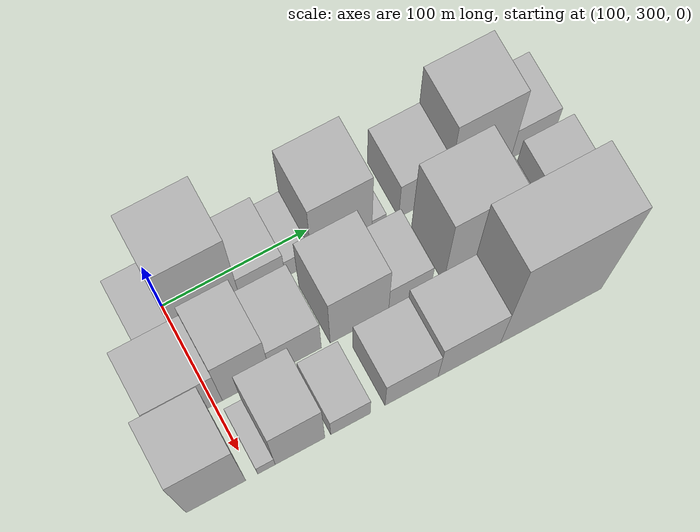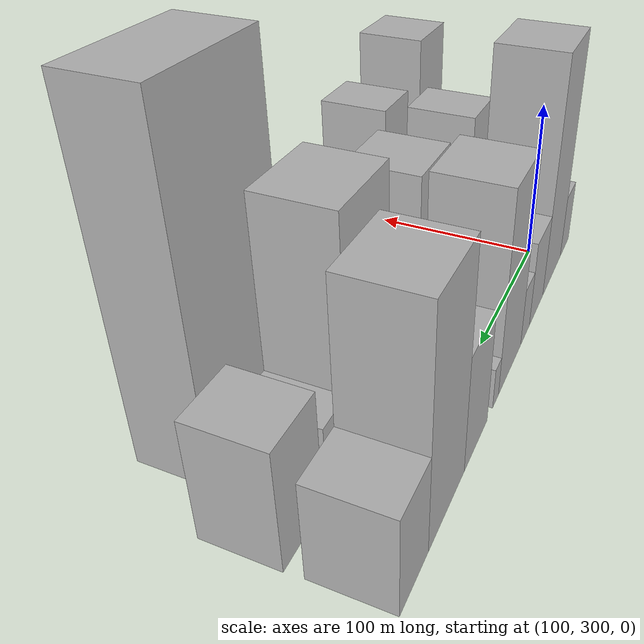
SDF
<sdf version="1.6">
 <world name="default">
  <model name="building_26">
   <static>1</static>
   <pose>100.0000 286.7399 0 0.000000 0.000000 0.000000</pose>
   <link name="link">
    <pose>0 0 21.00 0 0 0</pose>
    <collision name="collision"><geometry><box><size>40.0000 23.2135 42.0000</size></box></geometry></collision>
    <visual name="visual">
     <cast_shadows>0</cast_shadows>
     <geometry><box><size>40.0000 23.2135 42.0000</size></box></geometry>
     <material>
      <script>
       <uri>model://HANNAS_wall/materials/scripts</uri>
       <uri>model://HANNAS_wall/materials/textures</uri>
       <name>vrc/HANNAS_wall</name>
      </script>
     </material>
    </visual>
   </link>
  </model>
  <model name="building_27">
   <static>1</static>
   <pose>100.0000 320.9739 0 0.000000 0.000000 0.000000</pose>
   <link name="link">
    <pose>0 0 73.50 0 0 0</pose>
    <collision name="collision"><geometry><box><size>40.0000 45.2546 147.0000</size></box></geometry></collision>
    <visual name="visual">
     <cast_shadows>0</cast_shadows>
     <geometry><box><size>40.0000 45.2546 147.0000</size></box></geometry>
     <material>
      <script>
       <uri>model://HANNAS_wall/materials/scripts</uri>
       <uri>model://HANNAS_wall/materials/textures</uri>
       <name>vrc/HANNAS_wall</name>
      </script>
     </material>
    </visual>
   </link>
  </model>
  <model name="building_28">
   <static>1</static>
   <pose>100.0000 358.9560 0 0.000000 0.000000 0.000000</pose>
   <link name="link">
    <pose>0 0 27.00 0 0 0</pose>
    <collision name="collision"><geometry><box><size>40.0000 30.7095 54.0000</size></box></geometry></collision>
    <visual name="visual">
     <cast_shadows>0</cast_shadows>
     <geometry><box><size>40.0000 30.7095 54.0000</size></box></geometry>
     <material>
      <script>
       <uri>model://HANNAS_wall/materials/scripts</uri>
       <uri>model://HANNAS_wall/materials/textures</uri>
       <name>vrc/HANNAS_wall</name>
      </script>
     </material>
    </visual>
   </link>
  </model>
  <model name="building_29">
   <static>1</static>
   <pose>100.0000 383.4012 0 0.000000 0.000000 0.000000</pose>
   <link name="link">
    <pose>0 0 18.00 0 0 0</pose>
    <collision name="collision"><geometry><box><size>40.0000 18.1811 36.0000</size></box></geometry></collision>
    <visual name="visual">
     <cast_shadows>0</cast_shadows>
     <geometry><box><size>40.0000 18.1811 36.0000</size></box></geometry>
     <material>
      <script>
       <uri>model://HANNAS_wall/materials/scripts</uri>
       <uri>model://HANNAS_wall/materials/textures</uri>
       <name>vrc/HANNAS_wall</name>
      </script>
     </material>
    </visual>
   </link>
  </model>
  <model name="building_30">
   <static>1</static>
   <pose>100.0000 413.2691 0 0.000000 0.000000 0.000000</pose>
   <link name="link">
    <pose>0 0 58.50 0 0 0</pose>
    <collision name="collision"><geometry><box><size>40.0000 41.5546 117.0000</size></box></geometry></collision>
    <visual name="visual">
     <cast_shadows>0</cast_shadows>
     <geometry><box><size>40.0000 41.5546 117.0000</size></box></geometry>
     <material>
      <script>
       <uri>model://HANNAS_wall/materials/scripts</uri>
       <uri>model://HANNAS_wall/materials/textures</uri>
       <name>vrc/HANNAS_wall</name>
      </script>
     </material>
    </visual>
   </link>
  </model>
  <model name="building_31">
   <static>1</static>
   <pose>100.0000 438.9469 0 0.000000 0.000000 0.000000</pose>
   <link name="link">
    <pose>0 0 12.00 0 0 0</pose>
    <collision name="collision"><geometry><box><size>40.0000 9.8010 24.0000</size></box></geometry></collision>
    <visual name="visual">
     <cast_shadows>0</cast_shadows>
     <geometry><box><size>40.0000 9.8010 24.0000</size></box></geometry>
     <material>
      <script>
       <uri>model://HANNAS_wall/materials/scripts</uri>
       <uri>model://HANNAS_wall/materials/textures</uri>
       <name>vrc/HANNAS_wall</name>
      </script>
     </material>
    </visual>
   </link>
  </model>
  <model name="building_32">
   <static>1</static>
   <pose>100.0000 469.9626 0 0.000000 0.000000 0.000000</pose>
   <link name="link">
    <pose>0 0 33.00 0 0 0</pose>
    <collision name="collision"><geometry><box><size>40.0000 34.2305 66.0000</size></box></geometry></collision>
    <visual name="visual">
     <cast_shadows>0</cast_shadows>
     <geometry><box><size>40.0000 34.2305 66.0000</size></box></geometry>
     <material>
      <script>
       <uri>model://HANNAS_wall/materials/scripts</uri>
       <uri>model://HANNAS_wall/materials/textures</uri>
       <name>vrc/HANNAS_wall</name>
      </script>
     </material>
    </visual>
   </link>
  </model>
  <model name="building_33">
   <static>1</static>
   <pose>100.0000 509.4696 0 0.000000 0.000000 0.000000</pose>
   <link name="link">
    <pose>0 0 63.00 0 0 0</pose>
    <collision name="collision"><geometry><box><size>40.0000 44.7833 126.0000</size></box></geometry></collision>
    <visual name="visual">
     <cast_shadows>0</cast_shadows>
     <geometry><box><size>40.0000 44.7833 126.0000</size></box></geometry>
     <material>
      <script>
       <uri>model://HANNAS_wall/materials/scripts</uri>
       <uri>model://HANNAS_wall/materials/textures</uri>
       <name>vrc/HANNAS_wall</name>
      </script>
     </material>
    </visual>
   </link>
  </model>
  <model name="building_34">
   <static>1</static>
   <pose>100.0000 546.9187 0 0.000000 0.000000 0.000000</pose>
   <link name="link">
    <pose>0 0 27.00 0 0 0</pose>
    <collision name="collision"><geometry><box><size>40.0000 30.1150 54.0000</size></box></geometry></collision>
    <visual name="visual">
     <cast_shadows>0</cast_shadows>
     <geometry><box><size>40.0000 30.1150 54.0000</size></box></geometry>
     <material>
      <script>
       <uri>model://HANNAS_wall/materials/scripts</uri>
       <uri>model://HANNAS_wall/materials/textures</uri>
       <name>vrc/HANNAS_wall</name>
      </script>
     </material>
    </visual>
   </link>
  </model>
  <model name="building_58">
   <static>1</static>
   <pose>149.0000 283.2362 0 0.000000 0.000000 0.000000</pose>
   <link name="link">
    <pose>0 0 40.50 0 0 0</pose>
    <collision name="collision"><geometry><box><size>40.0000 44.6034 81.0000</size></box></geometry></collision>
    <visual name="visual">
     <cast_shadows>0</cast_shadows>
     <geometry><box><size>40.0000 44.6034 81.0000</size></box></geometry>
     <material>
      <script>
       <uri>model://HANNAS_wall/materials/scripts</uri>
       <uri>model://HANNAS_wall/materials/textures</uri>
       <name>vrc/HANNAS_wall</name>
      </script>
     </material>
    </visual>
   </link>
  </model>
  <model name="building_59">
   <static>1</static>
   <pose>149.0000 321.8739 0 0.000000 0.000000 0.000000</pose>
   <link name="link">
    <pose>0 0 51.00 0 0 0</pose>
    <collision name="collision"><geometry><box><size>40.0000 32.6721 102.0000</size></box></geometry></collision>
    <visual name="visual">
     <cast_shadows>0</cast_shadows>
     <geometry><box><size>40.0000 32.6721 102.0000</size></box></geometry>
     <material>
      <script>
       <uri>model://HANNAS_wall/materials/scripts</uri>
       <uri>model://HANNAS_wall/materials/textures</uri>
       <name>vrc/HANNAS_wall</name>
      </script>
     </material>
    </visual>
   </link>
  </model>
  <model name="building_60">
   <static>1</static>
   <pose>149.0000 355.4866 0 0.000000 0.000000 0.000000</pose>
   <link name="link">
    <pose>0 0 34.50 0 0 0</pose>
    <collision name="collision"><geometry><box><size>40.0000 34.5533 69.0000</size></box></geometry></collision>
    <visual name="visual">
     <cast_shadows>0</cast_shadows>
     <geometry><box><size>40.0000 34.5533 69.0000</size></box></geometry>
     <material>
      <script>
       <uri>model://HANNAS_wall/materials/scripts</uri>
       <uri>model://HANNAS_wall/materials/textures</uri>
       <name>vrc/HANNAS_wall</name>
      </script>
     </material>
    </visual>
   </link>
  </model>
  <model name="building_61">
   <static>1</static>
   <pose>149.0000 398.7767 0 0.000000 0.000000 0.000000</pose>
   <link name="link">
    <pose>0 0 52.50 0 0 0</pose>
    <collision name="collision"><geometry><box><size>40.0000 40.0269 105.0000</size></box></geometry></collision>
    <visual name="visual">
     <cast_shadows>0</cast_shadows>
     <geometry><box><size>40.0000 40.0269 105.0000</size></box></geometry>
     <material>
      <script>
       <uri>model://HANNAS_wall/materials/scripts</uri>
       <uri>model://HANNAS_wall/materials/textures</uri>
       <name>vrc/HANNAS_wall</name>
      </script>
     </material>
    </visual>
   </link>
  </model>
  <model name="building_62">
   <static>1</static>
   <pose>149.0000 433.3316 0 0.000000 0.000000 0.000000</pose>
   <link name="link">
    <pose>0 0 28.50 0 0 0</pose>
    <collision name="collision"><geometry><box><size>40.0000 29.0828 57.0000</size></box></geometry></collision>
    <visual name="visual">
     <cast_shadows>0</cast_shadows>
     <geometry><box><size>40.0000 29.0828 57.0000</size></box></geometry>
     <material>
      <script>
       <uri>model://HANNAS_wall/materials/scripts</uri>
       <uri>model://HANNAS_wall/materials/textures</uri>
       <name>vrc/HANNAS_wall</name>
      </script>
     </material>
    </visual>
   </link>
  </model>
  <model name="building_63">
   <static>1</static>
   <pose>149.0000 480.1877 0 0.000000 0.000000 0.000000</pose>
   <link name="link">
    <pose>0 0 66.00 0 0 0</pose>
    <collision name="collision"><geometry><box><size>40.0000 46.6295 132.0000</size></box></geometry></collision>
    <visual name="visual">
     <cast_shadows>0</cast_shadows>
     <geometry><box><size>40.0000 46.6295 132.0000</size></box></geometry>
     <material>
      <script>
       <uri>model://HANNAS_wall/materials/scripts</uri>
       <uri>model://HANNAS_wall/materials/textures</uri>
       <name>vrc/HANNAS_wall</name>
      </script>
     </material>
    </visual>
   </link>
  </model>
  <model name="building_64">
   <static>1</static>
   <pose>149.0000 514.1861 0 0.000000 0.000000 0.000000</pose>
   <link name="link">
    <pose>0 0 21.00 0 0 0</pose>
    <collision name="collision"><geometry><box><size>40.0000 21.3673 42.0000</size></box></geometry></collision>
    <visual name="visual">
     <cast_shadows>0</cast_shadows>
     <geometry><box><size>40.0000 21.3673 42.0000</size></box></geometry>
     <material>
      <script>
       <uri>model://HANNAS_wall/materials/scripts</uri>
       <uri>model://HANNAS_wall/materials/textures</uri>
       <name>vrc/HANNAS_wall</name>
      </script>
     </material>
    </visual>
   </link>
  </model>
  <model name="building_65">
   <static>1</static>
   <pose>149.0000 545.8099 0 0.000000 0.000000 0.000000</pose>
   <link name="link">
    <pose>0 0 33.00 0 0 0</pose>
    <collision name="collision"><geometry><box><size>40.0000 33.8802 66.0000</size></box></geometry></collision>
    <visual name="visual">
     <cast_shadows>0</cast_shadows>
     <geometry><box><size>40.0000 33.8802 66.0000</size></box></geometry>
     <material>
      <script>
       <uri>model://HANNAS_wall/materials/scripts</uri>
       <uri>model://HANNAS_wall/materials/textures</uri>
       <name>vrc/HANNAS_wall</name>
      </script>
     </material>
    </visual>
   </link>
  </model>
  <model name="building_90">
   <static>1</static>
   <pose>198.0000 275.7814 0 0.000000 0.000000 0.000000</pose>
   <link name="link">
    <pose>0 0 63.00 0 0 0</pose>
    <collision name="collision"><geometry><box><size>40.0000 39.6777 126.0000</size></box></geometry></collision>
    <visual name="visual">
     <cast_shadows>0</cast_shadows>
     <geometry><box><size>40.0000 39.6777 126.0000</size></box></geometry>
     <material>
      <script>
       <uri>model://HANNAS_wall/materials/scripts</uri>
       <uri>model://HANNAS_wall/materials/textures</uri>
       <name>vrc/HANNAS_wall</name>
      </script>
     </material>
    </visual>
   </link>
  </model>
  <model name="building_91">
   <static>1</static>
   <pose>198.0000 309.4685 0 0.000000 0.000000 0.000000</pose>
   <link name="link">
    <pose>0 0 12.00 0 0 0</pose>
    <collision name="collision"><geometry><box><size>40.0000 11.6965 24.0000</size></box></geometry></collision>
    <visual name="visual">
     <cast_shadows>0</cast_shadows>
     <geometry><box><size>40.0000 11.6965 24.0000</size></box></geometry>
     <material>
      <script>
       <uri>model://HANNAS_wall/materials/scripts</uri>
       <uri>model://HANNAS_wall/materials/textures</uri>
       <name>vrc/HANNAS_wall</name>
      </script>
     </material>
    </visual>
   </link>
  </model>
  <model name="building_92">
   <static>1</static>
   <pose>198.0000 332.0108 0 0.000000 0.000000 0.000000</pose>
   <link name="link">
    <pose>0 0 51.00 0 0 0</pose>
    <collision name="collision"><geometry><box><size>40.0000 33.3882 102.0000</size></box></geometry></collision>
    <visual name="visual">
     <cast_shadows>0</cast_shadows>
     <geometry><box><size>40.0000 33.3882 102.0000</size></box></geometry>
     <material>
      <script>
       <uri>model://HANNAS_wall/materials/scripts</uri>
       <uri>model://HANNAS_wall/materials/textures</uri>
       <name>vrc/HANNAS_wall</name>
      </script>
     </material>
    </visual>
   </link>
  </model>
  <model name="building_93">
   <static>1</static>
   <pose>198.0000 366.0904 0 0.000000 0.000000 0.000000</pose>
   <link name="link">
    <pose>0 0 22.50 0 0 0</pose>
    <collision name="collision"><geometry><box><size>40.0000 26.7709 45.0000</size></box></geometry></collision>
    <visual name="visual">
     <cast_shadows>0</cast_shadows>
     <geometry><box><size>40.0000 26.7709 45.0000</size></box></geometry>
     <material>
      <script>
       <uri>model://HANNAS_wall/materials/scripts</uri>
       <uri>model://HANNAS_wall/materials/textures</uri>
       <name>vrc/HANNAS_wall</name>
      </script>
     </material>
    </visual>
   </link>
  </model>
  <model name="building_94">
   <static>1</static>
   <pose>198.0000 407.6233 0 0.000000 0.000000 0.000000</pose>
   <link name="link">
    <pose>0 0 31.50 0 0 0</pose>
    <collision name="collision"><geometry><box><size>40.0000 36.2949 63.0000</size></box></geometry></collision>
    <visual name="visual">
     <cast_shadows>0</cast_shadows>
     <geometry><box><size>40.0000 36.2949 63.0000</size></box></geometry>
     <material>
      <script>
       <uri>model://HANNAS_wall/materials/scripts</uri>
       <uri>model://HANNAS_wall/materials/textures</uri>
       <name>vrc/HANNAS_wall</name>
      </script>
     </material>
    </visual>
   </link>
  </model>
  <model name="building_95">
   <static>1</static>
   <pose>198.0000 447.2494 0 0.000000 0.000000 0.000000</pose>
   <link name="link">
    <pose>0 0 40.50 0 0 0</pose>
    <collision name="collision"><geometry><box><size>40.0000 42.9573 81.0000</size></box></geometry></collision>
    <visual name="visual">
     <cast_shadows>0</cast_shadows>
     <geometry><box><size>40.0000 42.9573 81.0000</size></box></geometry>
     <material>
      <script>
       <uri>model://HANNAS_wall/materials/scripts</uri>
       <uri>model://HANNAS_wall/materials/textures</uri>
       <name>vrc/HANNAS_wall</name>
      </script>
     </material>
    </visual>
   </link>
  </model>
  <model name="building_96">
   <static>1</static>
   <pose>198.0000 503.9188 0 0.000000 0.000000 0.000000</pose>
   <link name="link">
    <pose>0 0 93.00 0 0 0</pose>
    <collision name="collision"><geometry><box><size>40.0000 70.3814 186.0000</size></box></geometry></collision>
    <visual name="visual">
     <cast_shadows>0</cast_shadows>
     <geometry><box><size>40.0000 70.3814 186.0000</size></box></geometry>
     <material>
      <script>
       <uri>model://HANNAS_wall/materials/scripts</uri>
       <uri>model://HANNAS_wall/materials/textures</uri>
       <name>vrc/HANNAS_wall</name>
      </script>
     </material>
    </visual>
   </link>
  </model>
 </world>
</sdf>
